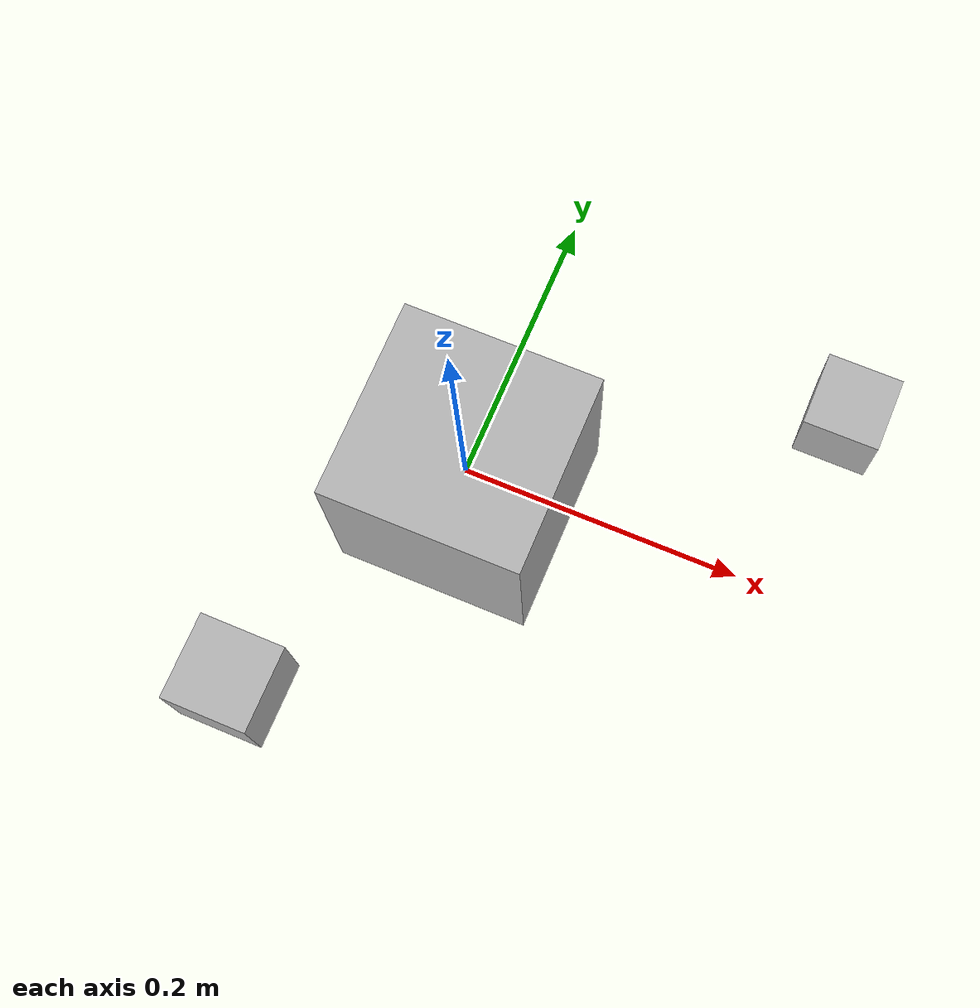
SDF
<?xml version="1.0" ?>
<sdf version='1.4'>
  <model name="lost_astronaut">
      <static>1</static>
        <link name='link_1'>
            <visual name='visual'>
            <pose frame=''>0 0 0 0 0 0</pose>
            <geometry>
            <mesh>
                <uri>model://lost_astronaut/meshes/lost_astronaut.dae</uri>
                <scale>0.025 0.025 0.025</scale>
            </mesh>
            </geometry>
            <cast_shadows>0</cast_shadows>
            <transparency>0</transparency>
        </visual>

        <collision name='collision'>
            <laser_retro>0</laser_retro>
            <pose frame=''>0 0 0 0 0 0</pose>
            <geometry>
            <mesh>
                <uri>model://lost_astronaut/meshes/lost_astronaut.stl</uri>
                <scale>0.025 0.025 0.025</scale>
            </mesh>
            </geometry>
        </collision>
        </link>
  </model>
</sdf>
